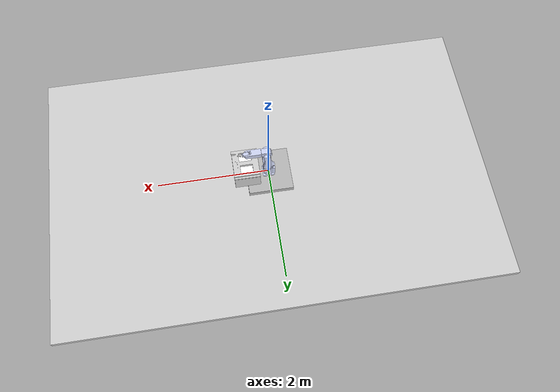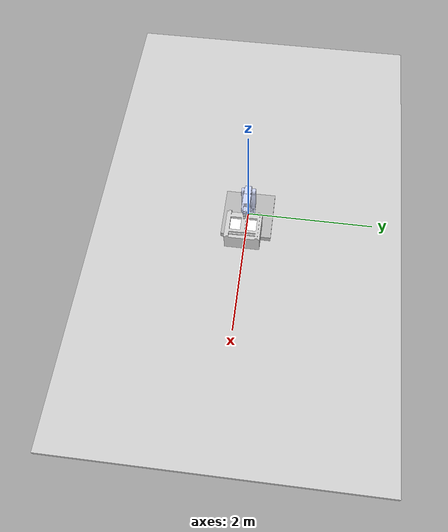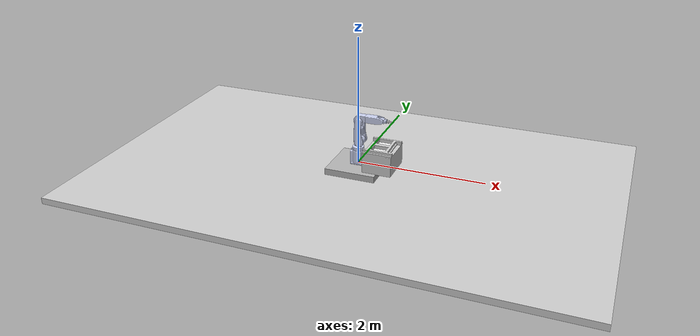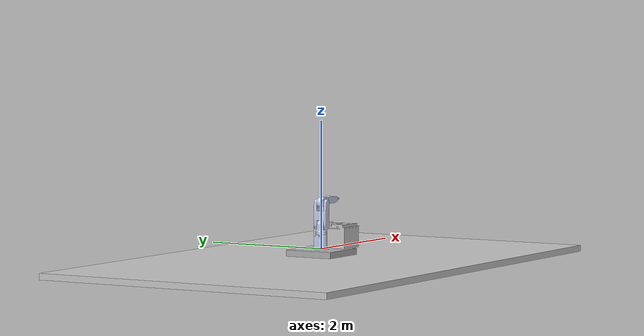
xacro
<?xml version="1.0" ?>
<robot name="hiwin_cell" xmlns:xacro="http://ros.org/wiki/xacro">

  <xacro:property name="workcell_width" value="5.0"/>
  <xacro:property name="workcell_length" value="8.0"/>
  <xacro:property name="workcell_height" value="3.0"/>
  <xacro:property name="workcell_thickness" value="0.1"/>
  <xacro:property name="workcell_z" value="-0.1"/>

  <xacro:property name="arm_prefix" value=""/>

  <xacro:include filename="$(find hiwin_ra605_support)/urdf/hiwin_ra605_macro.xacro"/>
  <xacro:include filename="$(find hiwin_cell_support)/urdf/tool_pointer_macro.xacro"/>
  <xacro:include filename="$(find hiwin_cell_support)/urdf/table_model.xacro"/>
  <xacro:include filename="$(find hiwin_cell_support)/urdf/ground_plate.xacro"/>
  <xacro:include filename="$(find hiwin_cell_support)/urdf/paper_frame.xacro"/>

  <material name="blue">
    <color rgba="0 0 0.8 1"/>
  </material>

  <material name="white">
    <color rgba="1 1 1 1"/>
  </material>

  <material name="yellow">
    <color rgba="255 255 0 1"/>
  </material>

  <material name="LightGrey">
    <color rgba="0.7 0.7 0.7 1.0"/>
  </material>

  <material name="workcell_material">
   <color rgba="0.8 0.8 0.8 1.0"/>
  </material>

  <xacro:hiwin_ra605 prefix=""/>

  <xacro:pointer_definition prefix="" gripper_adjustment="0.01"/>
  <joint name="${arm_prefix}to_pointer" type="fixed">
    <parent link="${arm_prefix}tool0"/>
    <child link="${arm_prefix}pointer_link"/>
    <origin xyz="0.0 0 0" rpy="0 0 0"/>
  </joint>

  <link name="world"/>

  <xacro:plate name="ground_plate"
    parent="world"
    length="0.8"
    width="0.8"
    height="0.39"
    plate_thickness="0.1"
    color="LightGrey">
    <origin xyz="0 0 0" rpy="0 0 0" />
  </xacro:plate>

  <joint name="plate_to_arm" type="fixed">
    <parent link="ground_plate_plate_link"/>
    <child link="base_link"/>
    <origin xyz="0 0 0" rpy="0 0 0"/>
  </joint>

  <xacro:table_definition
    prefix=""
    parent="ground_plate_plate_link">

    <origin xyz="0 0 0" rpy="0 0 0"/>
  </xacro:table_definition>

  <xacro:paper name="1"
    parent="table_to_paper_link"
    length="0.24"
    width="0.195"
    height="0.0"
    plate_thickness="0.00"
    color="white">
    <origin xyz="0.08 -0.034 0.001" rpy="0 0 -1.570796327" />
  </xacro:paper>

  <xacro:paper name="2"
    parent="table_to_paper_link"
    length="0.24"
    width="0.195"
    height="0.0"
    plate_thickness="0.00"
    color="white">
    <origin xyz="0.08 -0.27 0.001" rpy="0 0 -1.570796327" />
  </xacro:paper>

  <link name="workcell_floor">
    <visual><!-- bottom -->
      <material name="workcell_material"/>
      <origin xyz="0 0 0"/>
      <geometry>
        <box size="${workcell_length} ${workcell_width} ${workcell_thickness}"/>
      </geometry>
    </visual>
    <collision><!-- bottom -->
      <material name="workcell_material"/>
      <origin xyz="0 0 0"/>
      <geometry>
        <box size="${workcell_length} ${workcell_width} ${workcell_thickness}"/>
      </geometry>
    </collision>
  </link>

  <!-- joint definitions -->
  <joint name="world_to_floor" type="fixed">
    <parent link="world"/>
    <child link="workcell_floor"/>
    <origin xyz="0 0 -${workcell_thickness + 0.1}"/>
  </joint>

</robot>

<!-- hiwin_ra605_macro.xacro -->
<robot xmlns:xacro="http://ros.org/wiki/xacro">
<xacro:include filename="$(find hiwin_resources)/urdf/common_materials.xacro"/>

<xacro:property name="base_dispX" value="0.0" />
<xacro:property name="base_dispZ" value="0.0" />
<xacro:property name="joint1_dispX" value="0.0" />
<xacro:property name="joint1_dispZ" value="0.0" />
<xacro:property name="joint2_dispX" value="0.030" />
<xacro:property name="joint2_dispZ" value="0.373" />
<xacro:property name="joint3_dispX" value="0.0" />
<xacro:property name="joint3_dispZ" value="0.340" />
<xacro:property name="joint4_dispX" value="0.094" />
<xacro:property name="joint4_dispZ" value="0.040" />
<xacro:property name="joint5_dispX" value="0.244" />
<xacro:property name="joint5_dispZ" value="0.0" />
<xacro:property name="joint6_dispX" value="0.0865" />
<xacro:property name="joint6_dispZ" value="0.0" />

<xacro:property name="model2_origin" value="${joint2_dispX * -1} 0 ${joint2_dispZ * -1}" />
<xacro:property name="model3_origin" value="${(joint2_dispX + joint3_dispX) * -1} 0 ${(joint2_dispZ + joint3_dispZ) * -1}" />
<xacro:property name="model4_origin" value="${(joint2_dispX + joint3_dispX + joint4_dispX) * -1} 0 ${(joint2_dispZ + joint3_dispZ + joint4_dispZ) * -1}" />
<xacro:property name="model5_origin" value="${(joint2_dispX + joint3_dispX + joint4_dispX + joint5_dispX) * -1} 0 ${(joint2_dispZ + joint3_dispZ + joint4_dispZ + joint5_dispZ) * -1}" />
<xacro:property name="model6_origin" value="${(joint2_dispX + joint3_dispX + joint4_dispX + joint5_dispX + joint6_dispX) * -1} 0 ${(joint2_dispZ + joint3_dispZ + joint4_dispZ + joint5_dispZ + joint6_dispZ) * -1}" />

<xacro:macro name="hiwin_ra605" params="prefix">
    <!-- link list -->
    <link name="${prefix}base_link">
        <visual>
            <origin xyz="0 0 0" rpy="0 0 0"/>
            <geometry>
                <mesh filename="package://hiwin_ra605_support/meshes/hiwin_ra605/visual/base_link.dae"/>
            </geometry>
            <xacro:material_abb_orange />
        </visual>
        <collision>
            <geometry>
                <mesh filename="package://hiwin_ra605_support/meshes/hiwin_ra605/visual/base_link.dae"/>
            </geometry>
            <xacro:material_abb_yellow />
        </collision>
    </link>
    <link name="${prefix}link_1">
        <visual>
            <origin xyz="0 0 0" rpy="0 0 0"/>
            <geometry>
                <mesh filename="package://hiwin_ra605_support/meshes/hiwin_ra605/visual/link_1.dae"/>
            </geometry>
            <xacro:material_abb_orange />
        </visual>
        <collision>
            <origin xyz="0 0 0" rpy="0 0 0"/>
            <geometry>
                <mesh filename="package://hiwin_ra605_support/meshes/hiwin_ra605/visual/link_1.dae"/>
            </geometry>
            <xacro:material_abb_yellow />
        </collision>
    </link>
    <link name="${prefix}link_2">
        <visual>
            <origin xyz="${model2_origin}" rpy="0 0 0"/>
            <geometry>
                <mesh filename="package://hiwin_ra605_support/meshes/hiwin_ra605/visual/link_2.dae"/>
            </geometry>
            <xacro:material_abb_orange />
        </visual>
        <collision>
            <origin xyz="${model2_origin}" rpy="0 0 0"/>
            <geometry>
                <mesh filename="package://hiwin_ra605_support/meshes/hiwin_ra605/visual/link_2.dae"/>
            </geometry>
            <xacro:material_abb_yellow />
        </collision>
    </link>
    <link name="${prefix}link_3">
        <visual>
            <origin xyz="${model3_origin}" rpy="0 0 0"/>
            <geometry>
                <mesh filename="package://hiwin_ra605_support/meshes/hiwin_ra605/visual/link_3.dae"/>
            </geometry>
            <xacro:material_abb_orange />
        </visual>
        <collision>
            <origin xyz="${model3_origin}" rpy="0 0 0"/>
            <geometry>
                <mesh filename="package://hiwin_ra605_support/meshes/hiwin_ra605/visual/link_3.dae"/>
            </geometry>
            <xacro:material_abb_yellow />
        </collision>
    </link>
    <link name="${prefix}link_4">
        <visual>
            <origin xyz="${model4_origin}" rpy="0 0 0"/>
            <geometry>
                <mesh filename="package://hiwin_ra605_support/meshes/hiwin_ra605/visual/link_4.dae"/>
            </geometry>
            <xacro:material_abb_orange />
        </visual>
        <collision>
            <origin xyz="${model4_origin}" rpy="0 0 0"/>
            <geometry>
                <mesh filename="package://hiwin_ra605_support/meshes/hiwin_ra605/visual/link_4.dae"/>
            </geometry>
            <xacro:material_abb_yellow />
        </collision>
    </link>
    <link name="${prefix}link_5">
        <visual>
            <origin xyz="${model5_origin}" rpy="0 0 0"/>
            <geometry>
                <mesh filename="package://hiwin_ra605_support/meshes/hiwin_ra605/visual/link_5.dae"/>
            </geometry>
            <xacro:material_abb_orange />
        </visual>
        <collision>
            <origin xyz="${model5_origin}" rpy="0 0 0"/>
            <geometry>
                <mesh filename="package://hiwin_ra605_support/meshes/hiwin_ra605/visual/link_5.dae"/>
            </geometry>
            <xacro:material_abb_yellow />
        </collision>
    </link>
    <link name="${prefix}link_6">
        <visual>
            <origin xyz="${model6_origin}" rpy="0 0 0"/>
            <geometry>
                <mesh filename="package://hiwin_ra605_support/meshes/hiwin_ra605/visual/link_6.dae"/>
            </geometry>
            <xacro:material_abb_black />
        </visual>
        <collision>
            <origin xyz="${model6_origin}" rpy="0 0 0"/>
            <geometry>
                <mesh filename="package://hiwin_ra605_support/meshes/hiwin_ra605/visual/link_6.dae"/>
            </geometry>
            <xacro:material_abb_yellow />
        </collision>
    </link>
    <link name="${prefix}tool0"/>
    <!-- end of link list -->

    <!-- joint list -->
    <joint name="${prefix}joint_1" type="revolute">
        <origin xyz="0 0 0" rpy="0 0 0"/>
        <parent link="${prefix}base_link"/>
        <child link="${prefix}link_1"/>
        <axis xyz="0 0 1"/>
        <limit lower="-2.86" upper="2.86" effort="0" velocity="4.36"/>
    </joint>
    <joint name="${prefix}joint_2" type="revolute">
        <origin xyz="${joint2_dispX} 0 ${joint2_dispZ}" rpy="0 0 0"/>
        <parent link="${prefix}link_1"/>
        <child link="${prefix}link_2"/>
        <axis xyz="0 -1 0"/>
        <limit lower="-2.18" upper="1.48" effort="0" velocity="3.49"/>
    </joint>
    <joint name="${prefix}joint_3" type="revolute">
        <origin xyz="${joint3_dispX} 0 ${joint3_dispZ}" rpy="0 0 0"/>
        <parent link="${prefix}link_2"/>
        <child link="${prefix}link_3"/>
        <axis xyz="0 -1 0"/>
        <limit lower="-0.95" upper="3.22" effort="0" velocity="4.36"/>
    </joint>
    <joint name="${prefix}joint_4" type="revolute">
        <origin xyz="${joint4_dispX} 0 ${joint4_dispZ}" rpy="0 0 0"/>
        <parent link="${prefix}link_3"/>
        <child link="${prefix}link_4"/>
        <axis xyz="1 0 0"/>
        <limit lower="-3.3" upper="3.3" effort="0" velocity="4.36"/>
    </joint>
    <joint name="${prefix}joint_5" type="revolute">
        <origin xyz="${joint5_dispX} 0 ${joint5_dispZ}" rpy="0 0 0"/>
        <parent link="${prefix}link_4"/>
        <child link="${prefix}link_5"/>
        <axis xyz="0 -1 0"/>
        <limit lower="-2.0" upper="2.0" effort="0" velocity="4.36"/>
    </joint>
    <joint name="${prefix}joint_6" type="revolute">
        <origin xyz="${joint6_dispX} 0 ${joint6_dispZ}" rpy="0 0 0"/>
        <parent link="${prefix}link_5"/>
        <child link="${prefix}link_6"/>
        <axis xyz="1 0 0"/>
        <limit lower="-6.2831" upper="6.2831" effort="0" velocity="6.98"/>
    </joint>
    <joint name="${prefix}joint_6-tool0" type="fixed">
        <parent link="${prefix}link_6"/>
        <child link="${prefix}tool0"/>
        <origin xyz="0 0 0" rpy="-1.5707 -1.57079632679 -1.5707"/>
    </joint>
    <!-- end of joint list -->

    <!-- ROS base_link to ABB World Coordinates transform -->
    <link name="${prefix}base" />
    <joint name="${prefix}base_link-base" type="fixed">
        <origin xyz="0 0 0" rpy="0 0 0"/>
        <parent link="${prefix}base_link"/>
        <child link="${prefix}base"/>
    </joint>
</xacro:macro>
</robot>

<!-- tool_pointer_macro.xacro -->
<robot xmlns:xacro="http://ros.org/wiki/xacro">
	<!-- parameter list -->
	<xacro:property name="gripper_length" value="0.044"/>
	<xacro:property name="gripper_width" value="0.088"/>
	<xacro:property name="gripper_height" value="0.0946"/>
	<xacro:property name="gripper_body_height" value="0.16"/>

	<xacro:macro name="pointer_definition" params="prefix gripper_adjustment">
		<link name="${prefix}pointer_link">
			<visual>
				<origin xyz="0 0 0" rpy="0 0 0"/>
				<geometry>
					<mesh filename="package://hiwin_cell_support/meshes/tool_pointer.stl" />
				</geometry>
				<material name="silver">
					<color rgba="0.8 0.8 0.8 1"/>
				</material>
			</visual>
			<collision>
				<geometry>
					<mesh filename="package://hiwin_cell_support/meshes/tool_pointer.stl" />
				</geometry>
				<material name="another_blue2">
					<color rgba="0.38 0.54 0.83 1"/>
				</material>
			</collision>
		</link>

		<link name="${prefix}tcp_frame"/>
		<joint name="${prefix}pointer_to_tcp" type="fixed">
			<parent link="${prefix}pointer_link"/>
			<child link="${prefix}tcp_frame"/>
			<origin xyz=" 0 0 0.090" rpy="0 0 0"/>
		</joint>

	</xacro:macro>
</robot>

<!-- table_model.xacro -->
<robot xmlns:xacro="http://ros.org/wiki/xacro">
    <!-- parameter list -->

    <xacro:macro name="table_definition" params="prefix *origin parent">
        <link name="${prefix}table_link">
            <visual>
                <origin xyz="0 0 0" rpy="0 0 0"/>
                <geometry>
                    <mesh filename="package://hiwin_cell_support/meshes/table.dae" />
                </geometry>
                <material name="silver">
                    <color rgba="0.8 0.8 0.8 1"/>
                </material>
            </visual>
            <collision>
                <geometry>
                    <mesh filename="package://hiwin_cell_support/meshes/table.stl" />
                    <cylinder radius=".015" length="0.02" />
                </geometry>
                <material name="another_blue2">
                    <color rgba="0.38 0.54 0.83 1"/>
                </material>
            </collision>
        </link>

        <joint name="${parent}to_${prefix}table" type="fixed">
            <parent link="${parent}"/>
            <child link="${prefix}table_link"/>
            <origin xyz="0 0 0" rpy="0 0 0"/>
        </joint>

        <link name="table_to_paper_link" />

        <joint name="${prefix}table_to_paper" type="fixed">
            <parent link="${prefix}table_link"/>
            <child link="${prefix}table_to_paper_link"/>
            <origin xyz="0.2 0.216 0.309" rpy="0 0 0" />
        </joint>

    </xacro:macro>
</robot>

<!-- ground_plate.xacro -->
<robot xmlns:xacro="http://ros.org/wiki/xacro">

<xacro:macro name="plate" params="parent name *origin length width height plate_thickness color">
    <joint name="${parent}_${name}_base_joint" type="fixed">
        <xacro:insert_block name="origin"/>
        <parent link="${parent}"/>
        <child link="${name}_plate_link"/>
    </joint>
    <link name="${name}_plate_link">
        <visual>
            <origin xyz="0 0 ${-0.5 * plate_thickness}"/>
            <geometry>
                <box size="${length} ${width} ${plate_thickness}"/>
      </geometry>
      <material name="${color}"/>
    </visual>
        <collision>
            <origin xyz="0 0 ${-0.5 * plate_thickness}"/>
            <geometry>
                <box size="${length} ${width} ${plate_thickness}"/>
            </geometry>
        </collision>
    </link>

</xacro:macro>
</robot>

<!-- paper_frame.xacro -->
<robot xmlns:xacro="http://ros.org/wiki/xacro">

<xacro:macro name="paper" params="parent name *origin length width height plate_thickness color">
    <joint name="${parent}_${name}_base_joint" type="fixed">
        <xacro:insert_block name="origin"/>
        <parent link="${parent}"/>
        <child link="table_paper_frame${name}"/>
    </joint>
    <link name="table_paper_frame${name}">
        <visual>
            <origin xyz="${1/2 * width} ${1/2 * length} ${-1 * plate_thickness}"/>
            <geometry>
                <box size="${width} ${length} ${plate_thickness}"/>
              </geometry>
            <material name="${color}"/>
        </visual>
        <collision>
            <origin xyz="${1/2 * width} ${1/2 * length} ${-1 * plate_thickness}"/>
            <geometry>
                <box size="${width} ${length} ${plate_thickness * 0.01}"/>
            </geometry>
        </collision>
    </link>

</xacro:macro>
</robot>
